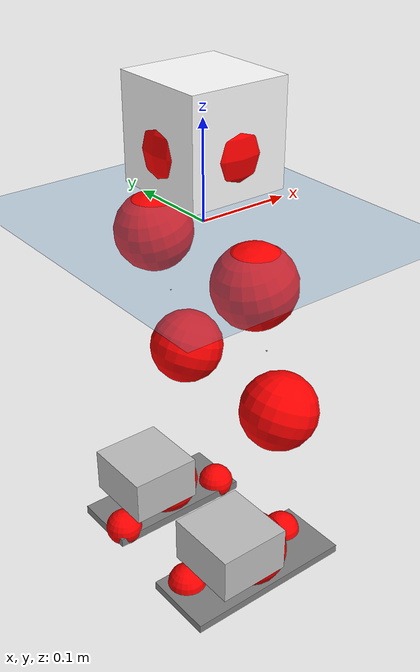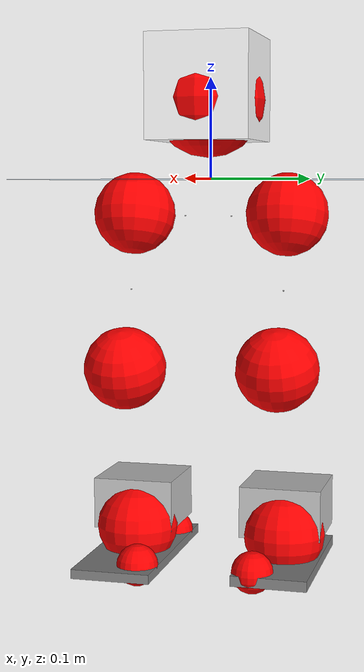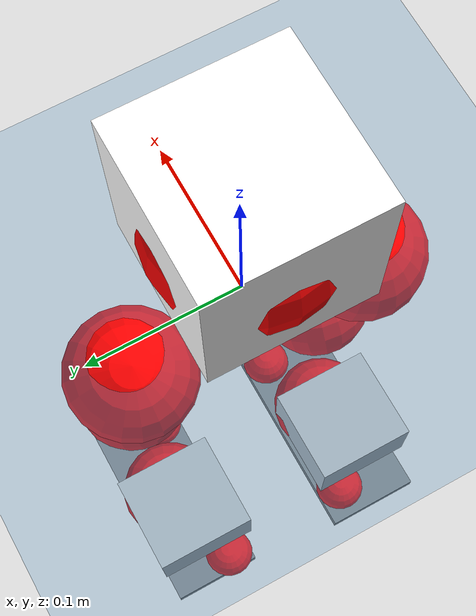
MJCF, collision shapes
<mujoco model="pi_12dof_release_v1">
  <compiler angle="radian" assetdir="assets" balanceinertia="true" inertiafromgeom="false"/>

  <option timestep="0.005" density="1.2" viscosity="2e-05"/>

  <size nkey="1"/>

  <visual>
    <quality shadowsize="8192"/>
    <map shadowclip="0.5"/>
  </visual>

  <default>
    <default class="/">
      <joint armature="0.01" damping="0.01" frictionloss="0.01"/>
      <geom contype="0" conaffinity="0" group="1" solref="-1000 -80"/>
      <site size="0.01 0.005 0.005" group="5"/>
      <general forcelimited="true" biastype="affine" gainprm="20" biasprm="0 -20 -0.5"/>
      <default class="foot">
        <geom size="0.0845 0.036 0.005" type="box" condim="6" group="4" priority="1" friction="0.9 0.2 0.2" solimp="0.015 1 0.005"/>
      </default>
      <default class="reward_collision_sphere">
        <geom group="5" rgba="1 0 0 1"/>
      </default>
    </default>
  </default>

  <asset>
    <texture type="skybox" colorspace="auto" name="//unnamed_texture_0" builtin="gradient" rgb1="0.95 0.95 0.95" rgb2="0.95 0.95 0.95" width="100" height="600"/>
    <texture type="2d" colorspace="auto" name="texplane" builtin="checker" rgb1="0.345 0.575 0.748" rgb2="0.345 0.575 0.748" markrgb="1 1 1" width="512" height="512"/>
    <material name="MatPlane" class="/" texture="texplane" texuniform="true" texrepeat="2 2" specular="0.9"/>
    <mesh name="baselink_1" class="/" file="baselink_1.STL"/>
    <mesh name="r_hip_pitch_link" class="/" file="r_hip_pitch_link.STL"/>
    <mesh name="r_hip_roll_link" class="/" file="r_hip_roll_link.STL"/>
    <mesh name="r_thigh_link" class="/" file="r_thigh_link.STL"/>
    <mesh name="r_calf_link" class="/" file="r_calf_link.STL"/>
    <mesh name="r_ankle_pitch_link" class="/" file="r_ankle_pitch_link.STL"/>
    <mesh name="r_ankle_roll_link" class="/" file="r_ankle_roll_link.STL"/>
    <mesh name="l_hip_pitch_link" class="/" file="l_hip_pitch_link.STL"/>
    <mesh name="l_hip_roll_link" class="/" file="l_hip_roll_link.STL"/>
    <mesh name="l_thigh_link" class="/" file="l_thigh_link.STL"/>
    <mesh name="l_calf_link" class="/" file="l_calf_link.STL"/>
    <mesh name="l_ankle_pitch_link" class="/" file="l_ankle_pitch_link.STL"/>
    <mesh name="l_ankle_roll_link" class="/" file="l_ankle_roll_link.STL"/>
  </asset>

  <worldbody>
    <geom name="floor" class="/" size="100 100 0.125" type="plane" group="0" material="MatPlane"/>
    <light name="toplight_shadow" class="/" pos="0 0 5" dir="0.0990148 0.0990148 -0.990148" type="directional" ambient="0.04 0.04 0.04" diffuse="0.55 0.55 0.55" specular="0.12 0.12 0.12"/>
    <light name="toplight_fill" class="/" pos="0 0 5" dir="0.0990148 0.0990148 -0.990148" type="directional" castshadow="false" ambient="0.04 0.04 0.04" diffuse="0.3 0.3 0.3" specular="0.08 0.08 0.08"/>
    <body name="trunk" pos="-0.00131033 -0.00279842 -0.00193397" quat="0.999999 0.000495497 -0.000302584 -0.00108748">
      <inertial pos="0.00144211 -0.00142047 0.0464496" quat="0.696472 0.0097517 0.000210765 0.717517" mass="2.42575" diaginertia="0.00961027 0.00734896 0.00830486"/>
      <joint name="//unnamed_joint_0" type="free"/>
      <geom name="//unnamed_geom_1" class="/" type="mesh" density="0" rgba="1 1 1 1" mesh="baselink_1"/>
      <geom name="//unnamed_geom_2" class="/" size="0.0517351 0.0517351 0.0517351" pos="0 0 0.0914027" type="box" rgba="1 1 1 1"/>
      <geom name="//unnamed_geom_3" class="reward_collision_sphere" size="0.0569086" pos="0 0 0.0799774"/>
      <site name="imu" class="/" pos="-0.00197739 0.00857789 -0.00411804" size="0.010347"/>
      <camera name="track" class="/" pos="0 -1.92533 0" quat="0.707107 0.707107 0 0" mode="trackcom"/>
      <camera name="ego_camera" class="/" pos="0.074918 0 0.205656" quat="-0.5 -0.5 0.5 0.5"/>
      <body name="r_hip_pitch_link" pos="-0.00242846 -0.0248 -0.0348557" quat="0.992228 0.000605709 -0.124429 0.000244528">
        <inertial pos="0.000207072 -0.056668 -0.00252764" quat="-0.0166034 0.708286 -0.0300379 0.705091" mass="0.424912" diaginertia="0.000111528 8.14983e-05 0.000171595"/>
        <joint name="r_hip_pitch_joint" class="/" pos="0 0 0" axis="-0.0103367 -0.999926 -0.00641405" stiffness="0.00238971" range="-1.74954 1.27533" armature="0.0102643" damping="0.00483591" frictionloss="0.0117849"/>
        <geom name="//unnamed_geom_4" class="/" type="mesh" density="0" rgba="0.75294 0.75294 0.75294 1" mesh="r_hip_pitch_link"/>
        <geom name="//unnamed_geom_5" class="/" size="0.000517351 0.000517351 0.000517351" type="box" rgba="0.75294 0.75294 0.75294 1"/>
        <body name="r_hip_roll_link" pos="0.000729443 -0.0531704 0.00209972" quat="1 1.71928e-05 3.29216e-05 -1.83514e-05">
          <inertial pos="-0.000530171 -0.00118565 -0.0676108" quat="0.705622 -0.0772888 -0.087206 0.698942" mass="0.430014" diaginertia="0.000338844 0.000233621 0.000245748"/>
          <joint name="r_hip_roll_joint" class="/" pos="0 0 0" axis="-1 -0.000337733 -0.000298987" stiffness="0.0109728" range="-0.168164 0.548266" armature="0.00930688" damping="0" frictionloss="0.0100663"/>
          <geom name="//unnamed_geom_6" class="/" type="mesh" density="0" rgba="0.75294 0.75294 0.75294 1" mesh="r_hip_roll_link"/>
          <geom name="//unnamed_geom_7" class="/" size="0.000517351 0.000517351 0.000517351" type="box" rgba="0.75294 0.75294 0.75294 1"/>
          <geom name="//unnamed_geom_8" class="reward_collision_sphere" size="0.0413881"/>
          <body name="r_thigh_link" pos="-0.000716495 0.00127441 -0.0783244" quat="0.999999 -0.00111633 0.000634673 0.000563585">
            <inertial pos="0.00293875 0.00320764 -0.0569038" quat="0.739528 0.673057 -0.00863354 -0.00434162" mass="0.126583" diaginertia="0.000122417 8.09674e-05 0.000109014"/>
            <joint name="r_thigh_joint" class="/" pos="0 0 0" axis="0.011658 0.000104116 -0.999932" stiffness="0.000201424" range="-0.296488 0.652838" armature="0.00917909" damping="0.0165769" frictionloss="0.0108273"/>
            <geom name="//unnamed_geom_9" class="/" type="mesh" density="0" rgba="0.75294 0.75294 0.75294 1" mesh="r_thigh_link"/>
            <geom name="//unnamed_geom_10" class="/" size="0.000517351 0.000517351 0.000517351" type="box" rgba="0.75294 0.75294 0.75294 1"/>
            <body name="r_calf_link" pos="-0.000426151 -0.000745383 -0.0803354" quat="0.947978 -0.000170622 0.318336 0.000635291">
              <inertial pos="0.00221656 0.000219247 -0.079673" quat="0.999984 -0.00179654 -0.00352823 0.00405919" mass="0.933656" diaginertia="0.00365194 0.00298926 0.000339278"/>
              <joint name="r_calf_joint" class="/" pos="0 0 0" axis="0.000769829 -0.99999 -0.0044997" stiffness="0.00568128" range="-1.6341 0.604995" armature="0.0107235" damping="0.00646732" frictionloss="0.0107347"/>
              <geom name="//unnamed_geom_11" class="/" type="mesh" density="0" rgba="0.75294 0.75294 0.75294 1" mesh="r_calf_link"/>
              <geom name="//unnamed_geom_12" class="/" size="0.000517351 0.000517351 0.000517351" type="box" rgba="0.75294 0.75294 0.75294 1"/>
              <geom name="//unnamed_geom_13" class="reward_collision_sphere" size="0.0413881"/>
              <body name="r_ankle_pitch_link" pos="-0.000369197 0.000156098 -0.157922" quat="0.980038 0.000754848 -0.198809 4.96236e-05">
                <inertial pos="0.00199171 0.00273397 -0.00129953" quat="0.00587348 0.706442 -0.00214989 0.707743" mass="0.189061" diaginertia="0.000301113 0.000174434 0.000221147"/>
                <joint name="r_ankle_pitch_joint" class="/" pos="0 0 0" axis="0.00314341 -0.999989 -0.00355488" range="-1.34699 0.552604" armature="0.0107072" damping="0.0141546" frictionloss="0.00888702"/>
                <geom name="//unnamed_geom_14" class="/" type="mesh" density="0" rgba="0.75294 0.75294 0.75294 1" mesh="r_ankle_pitch_link"/>
                <geom name="//unnamed_geom_15" class="/" size="0.0403534 0.0413881 0.0258675" type="box" rgba="0.75294 0.75294 0.75294 1"/>
                <body name="r_ankle_roll_link" pos="0.0784924 0.00205459 -0.000274876" quat="1 -6.92269e-06 -1.38304e-05 -3.3679e-05">
                  <inertial pos="-0.0208658 0.000287738 -0.0175078" quat="0.55723 0.430243 0.435 0.561391" mass="0.597374" diaginertia="0.00119171 0.000847947 0.000562632"/>
                  <joint name="r_ankle_roll_joint" class="/" pos="0 0 0" axis="-1 4.3921e-05 4.97563e-05" range="-0.12905 0.104062" armature="0.0101288" damping="0" frictionloss="0.0103673"/>
                  <geom name="//unnamed_geom_16" class="/" type="mesh" density="0" rgba="0.75294 0.75294 0.75294 1" mesh="r_ankle_roll_link"/>
                  <geom name="//unnamed_geom_17" class="/" type="mesh" rgba="0.75294 0.75294 0.75294 1" mesh="r_ankle_roll_link"/>
                  <geom name="right_foot" class="foot" size="0.0966052 0.039545 0.00459737" pos="-0.0509443 0 -0.0502715"/>
                  <geom name="//unnamed_geom_19" class="reward_collision_sphere" size="0.0413881" pos="-0.0499454 0 -0.0228507"/>
                  <geom name="//unnamed_geom_20" class="reward_collision_sphere" size="0.020694" pos="0.0149836 0.0192533 -0.0457014"/>
                  <geom name="//unnamed_geom_21" class="reward_collision_sphere" size="0.020694" pos="-0.119869 0.0192533 -0.0457014"/>
                  <site name="right_foot" class="foot" pos="-0.0509443 0 -0.0502715" size="0.010347"/>
                </body>
              </body>
            </body>
          </body>
        </body>
      </body>
      <body name="l_hip_pitch_link" pos="-0.000535294 0.0233237 -0.0351131" quat="0.992201 -6.78247e-06 -0.124647 3.37026e-05">
        <inertial pos="0.00213961 0.0513078 -0.000829467" quat="-0.0384721 0.705332 0.0294137 0.707221" mass="0.42853" diaginertia="0.000126563 8.89382e-05 0.00019249"/>
        <joint name="l_hip_pitch_joint" class="/" pos="0 0 0" axis="0.000638759 0.999999 0.00137846" range="-1.19157 1.74071" armature="0.0117107" damping="0" frictionloss="0.0114588"/>
        <geom name="//unnamed_geom_22" class="/" type="mesh" density="0" rgba="0.75294 0.75294 0.75294 1" mesh="l_hip_pitch_link"/>
        <geom name="//unnamed_geom_23" class="/" size="0.000517351 0.000517351 0.000517351" type="box" rgba="0.75294 0.75294 0.75294 1"/>
        <body name="l_hip_roll_link" pos="-0.00185418 0.0563036 0.00245731" quat="1 -0.00077969 7.56669e-05 0.000183835">
          <inertial pos="-0.00102509 0.000646934 -0.0699097" quat="0.696108 -0.0708934 -0.0701376 0.710977" mass="0.41829" diaginertia="0.000335672 0.000222317 0.000254954"/>
          <joint name="l_hip_roll_joint" class="/" pos="0 0 0" axis="-0.999954 -0.00186238 0.00942901" stiffness="0.00049009" range="-0.524547 0.0765435" armature="0.0117529" damping="0.00676105" frictionloss="0.0116612"/>
          <geom name="//unnamed_geom_24" class="/" type="mesh" density="0" rgba="0.75294 0.75294 0.75294 1" mesh="l_hip_roll_link"/>
          <geom name="//unnamed_geom_25" class="/" size="0.000517351 0.000517351 0.000517351" type="box" rgba="0.75294 0.75294 0.75294 1"/>
          <geom name="//unnamed_geom_26" class="reward_collision_sphere" size="0.0413881"/>
          <body name="l_thigh_link" pos="0.000577458 0.00026967 -0.0767907" quat="1 -0.000269224 0.000362504 0.000298813">
            <inertial pos="9.74255e-05 -0.00149365 -0.0515255" quat="0.675372 0.737478 5.38707e-05 -2.82418e-05" mass="0.125639" diaginertia="0.00012424 7.81493e-05 0.000114735"/>
            <joint name="l_thigh_joint" class="/" pos="0 0 0" axis="-0.000622353 -4.15486e-05 -1" stiffness="0.00179632" range="-0.605249 0.313151" armature="0.00879794" damping="0.00749641" frictionloss="0.0107402"/>
            <geom name="//unnamed_geom_27" class="/" type="mesh" density="0" rgba="0.75294 0.75294 0.75294 1" mesh="l_thigh_link"/>
            <geom name="//unnamed_geom_28" class="/" size="0.000517351 0.000517351 0.000517351" type="box" rgba="0.75294 0.75294 0.75294 1"/>
            <body name="l_calf_link" pos="-0.000401652 -0.00194868 -0.0781711" quat="0.947885 6.23452e-05 0.318609 0.00121843">
              <inertial pos="0.000297294 0.00586191 -0.0795452" quat="0.99998 -0.00433611 -0.00440033 0.00152385" mass="0.902223" diaginertia="0.00362759 0.00299903 0.000331705"/>
              <joint name="l_calf_joint" class="/" pos="0 0 0" axis="0.0015842 0.999992 0.00363526" range="-0.643722 1.63824" armature="0.00986284" damping="0.0141155" frictionloss="0.0109676"/>
              <geom name="//unnamed_geom_29" class="/" type="mesh" density="0" rgba="0.75294 0.75294 0.75294 1" mesh="l_calf_link"/>
              <geom name="//unnamed_geom_30" class="/" size="0.000517351 0.000517351 0.000517351" type="box" rgba="0.75294 0.75294 0.75294 1"/>
              <geom name="//unnamed_geom_31" class="reward_collision_sphere" size="0.0413881"/>
              <body name="l_ankle_pitch_link" pos="0.000479834 -0.0013848 -0.16266" quat="0.979865 -0.000452006 -0.199661 -0.000428427">
                <inertial pos="0.00529068 -0.00344922 -0.00045503" quat="8.91687e-05 0.707926 0.00196168 0.706284" mass="0.184623" diaginertia="0.000291249 0.000178124 0.000222795"/>
                <joint name="l_ankle_pitch_joint" class="/" pos="0 0 0" axis="-0.000348961 0.999999 -0.00156149" stiffness="0.000397694" range="-0.503706 1.29719" armature="0.010209" damping="0.0149397" frictionloss="0.0114732"/>
                <geom name="//unnamed_geom_32" class="/" type="mesh" density="0" rgba="0.75294 0.75294 0.75294 1" mesh="l_ankle_pitch_link"/>
                <geom name="//unnamed_geom_33" class="/" size="0.0403534 0.0413881 0.0258675" type="box" rgba="0.75294 0.75294 0.75294 1"/>
                <body name="l_ankle_roll_link" pos="0.0752118 0.00244356 0.00025668" quat="1 1.30546e-05 -2.40512e-05 2.64388e-05">
                  <inertial pos="-0.0233561 0.000484273 -0.0138291" quat="0.56543 0.431557 0.435929 0.551375" mass="0.572241" diaginertia="0.00114764 0.000811947 0.000563137"/>
                  <joint name="l_ankle_roll_joint" class="/" pos="0 0 0" axis="-0.999917 -0.0122966 0.00372687" range="-0.17229 0.153939" armature="0.00984574" damping="0.0233225" frictionloss="0.0106439"/>
                  <geom name="//unnamed_geom_34" class="/" type="mesh" density="0" rgba="0.75294 0.75294 0.75294 1" mesh="l_ankle_roll_link"/>
                  <geom name="//unnamed_geom_35" class="/" type="mesh" rgba="0.75294 0.75294 0.75294 1" mesh="l_ankle_roll_link"/>
                  <geom name="left_foot" class="foot" size="0.0840907 0.0373232 0.00512399" pos="-0.0509443 0 -0.0502715"/>
                  <geom name="//unnamed_geom_37" class="reward_collision_sphere" size="0.0413881" pos="-0.0499454 0 -0.0228507"/>
                  <geom name="//unnamed_geom_38" class="reward_collision_sphere" size="0.020694" pos="0.0149836 -0.0192533 -0.0457014"/>
                  <geom name="//unnamed_geom_39" class="reward_collision_sphere" size="0.020694" pos="-0.119869 -0.0192533 -0.0457014"/>
                  <site name="left_foot" class="foot" pos="-0.0509443 0 -0.0502715" size="0.010347"/>
                </body>
              </body>
            </body>
          </body>
        </body>
      </body>
    </body>
  </worldbody>

  <contact>
    <pair class="/" geom1="floor" geom2="right_foot" name="//unnamed_contact_1"/>
    <pair class="/" geom1="floor" geom2="left_foot" name="//unnamed_contact_0"/>
  </contact>

  <actuator>
    <general name="r_hip_pitch_joint" class="/" joint="r_hip_pitch_joint" forcerange="-21.6853 21.6853" gainprm="20.4093" biasprm="0 -20.4093 -0.481323"/>
    <general name="r_hip_roll_joint" class="/" joint="r_hip_roll_joint" forcerange="-21.8812 21.8812" gainprm="20.4093" biasprm="0 -20.4093 -0.481323"/>
    <general name="r_thigh_joint" class="/" joint="r_thigh_joint" forcerange="-21.4729 21.4729" gainprm="20.4093" biasprm="0 -20.4093 -0.481323"/>
    <general name="r_calf_joint" class="/" joint="r_calf_joint" forcerange="-21.9483 21.9483" gainprm="20.4093" biasprm="0 -20.4093 -0.481323"/>
    <general name="r_ankle_pitch_joint" class="/" joint="r_ankle_pitch_joint" forcerange="-21.6415 21.6415" gainprm="20.4093" biasprm="0 -20.4093 -0.481323"/>
    <general name="r_ankle_roll_joint" class="/" joint="r_ankle_roll_joint" forcerange="-21.8586 21.8586" gainprm="20.4093" biasprm="0 -20.4093 -0.481323"/>
    <general name="l_hip_pitch_joint" class="/" joint="l_hip_pitch_joint" forcerange="-22.3425 22.3425" gainprm="20.4093" biasprm="0 -20.4093 -0.481323"/>
    <general name="l_hip_roll_joint" class="/" joint="l_hip_roll_joint" forcerange="-19.627 19.627" gainprm="20.4093" biasprm="0 -20.4093 -0.481323"/>
    <general name="l_thigh_joint" class="/" joint="l_thigh_joint" forcerange="-21.8823 21.8823" gainprm="20.4093" biasprm="0 -20.4093 -0.481323"/>
    <general name="l_calf_joint" class="/" joint="l_calf_joint" forcerange="-22.2906 22.2906" gainprm="20.4093" biasprm="0 -20.4093 -0.481323"/>
    <general name="l_ankle_pitch_joint" class="/" joint="l_ankle_pitch_joint" forcerange="-21.9602 21.9602" gainprm="20.4093" biasprm="0 -20.4093 -0.481323"/>
    <general name="l_ankle_roll_joint" class="/" joint="l_ankle_roll_joint" forcerange="-19.5321 19.5321" gainprm="20.4093" biasprm="0 -20.4093 -0.481323"/>
  </actuator>

  <sensor>
    <gyro site="imu" name="imu_angular_velocity"/>
    <velocimeter site="imu" name="imu_linear_velocity"/>
    <framelinvel objtype="site" objname="left_foot" name="left_foot_global_linear_velocity"/>
    <framelinvel objtype="site" objname="right_foot" name="right_foot_global_linear_velocity"/>
  </sensor>

  <keyframe>
    <key name="home" qpos="0 0 0.291 1 0 0 0 0.4 0 0 -0.8 0.4 0 -0.4 0 0 0.8 -0.4 0"/>
  </keyframe>
</mujoco>
